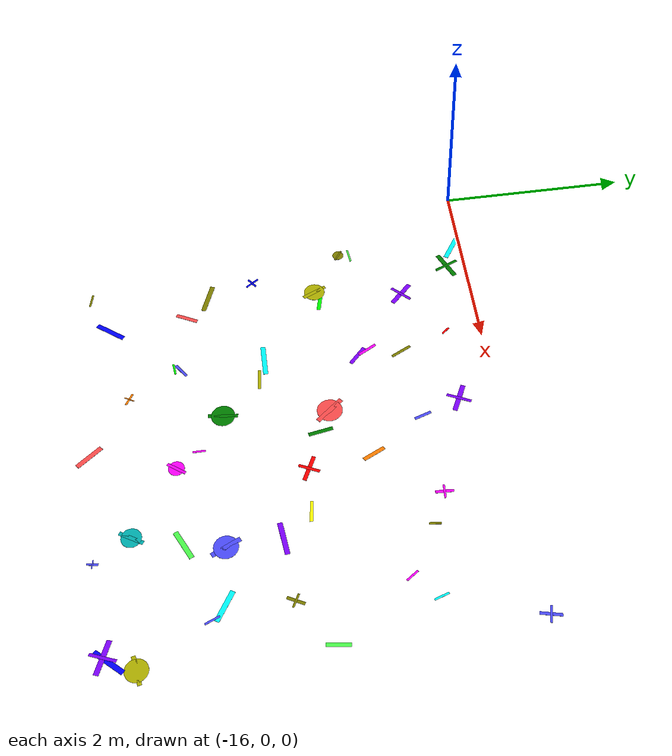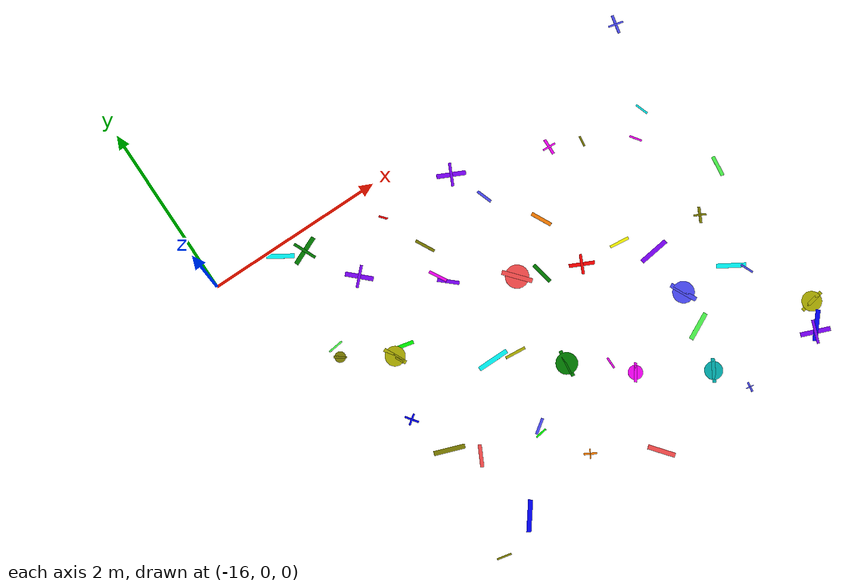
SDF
<sdf version="1.6">
 <world name="default">
  <model name="letter_W_41">
   <static>true</static>
   <pose>-15.07 -4.09 0.008 0 0 6.066</pose>
   <link name="link">
    <visual name="visual">
     <geometry><box><size>0.16 0.02 0.002</size></box></geometry>
     <material>
      <ambient>0.5 0.5 0.0 1</ambient>
      <diffuse>0.5 0.5 0.0 1</diffuse>
      <specular>0.1 0.1 0.1 1</specular>
     </material>
    </visual>
   </link>
  </model>
  <model name="letter_R_42">
   <static>true</static>
   <pose>-14.61 -3.89 0.011 0 0 0.914</pose>
   <link name="link">
    <visual name="visual">
     <geometry><box><size>0.34 0.05 0.002</size></box></geometry>
     <material>
      <ambient>0.0 0.0 1.0 1</ambient>
      <diffuse>0.0 0.0 1.0 1</diffuse>
      <specular>0.1 0.1 0.1 1</specular>
     </material>
    </visual>
   </link>
  </model>
  <model name="letter_Z_44">
   <static>true</static>
   <pose>-14.68 -3.08 0.006 0 0 1.091</pose>
   <link name="link">
    <visual name="visual">
     <geometry><box><size>0.24 0.04 0.002</size></box></geometry>
     <material>
      <ambient>1.0 0.3 0.3 1</ambient>
      <diffuse>1.0 0.3 0.3 1</diffuse>
      <specular>0.1 0.1 0.1 1</specular>
     </material>
    </visual>
   </link>
  </model>
  <model name="letter_S_45">
   <static>true</static>
   <pose>-14.92 -2.84 0.005 0 0 2.789</pose>
   <link name="link">
    <visual name="visual">
     <geometry><box><size>0.34 0.05 0.002</size></box></geometry>
     <material>
      <ambient>0.5 0.5 0.0 1</ambient>
      <diffuse>0.5 0.5 0.0 1</diffuse>
      <specular>0.1 0.1 0.1 1</specular>
     </material>
    </visual>
   </link>
  </model>
  <model name="letter_O_46">
   <static>true</static>
   <pose>-14.84 -1.69 0.010 0 0 2.019</pose>
   <link name="link">
    <visual name="visual">
     <geometry><box><size>0.27 0.04 0.002</size></box></geometry>
     <material>
      <ambient>0.7 0.7 0.0 1</ambient>
      <diffuse>0.7 0.7 0.0 1</diffuse>
      <specular>0.1 0.1 0.1 1</specular>
     </material>
    </visual>
    <visual name="visual2">
     <geometry><cylinder><radius>0.11</radius><length>0.002</length></cylinder></geometry>
     <material><ambient>0.7 0.7 0.0 1</ambient><diffuse>0.7 0.7 0.0 1</diffuse></material>
    </visual>
   </link>
  </model>
  <model name="letter_M_47">
   <static>true</static>
   <pose>-14.73 -1.64 0.007 0 0 6.056</pose>
   <link name="link">
    <visual name="visual">
     <geometry><box><size>0.28 0.04 0.002</size></box></geometry>
     <material>
      <ambient>0.0 1.0 0.0 1</ambient>
      <diffuse>0.0 1.0 0.0 1</diffuse>
      <specular>0.1 0.1 0.1 1</specular>
     </material>
    </visual>
   </link>
  </model>
  <model name="letter_F_48">
   <static>true</static>
   <pose>-15.07 -2.35 0.004 0 0 2.189</pose>
   <link name="link">
    <visual name="visual">
     <geometry><box><size>0.16 0.02 0.002</size></box></geometry>
     <material>
      <ambient>0.0 0.0 1.0 1</ambient>
      <diffuse>0.0 0.0 1.0 1</diffuse>
      <specular>0.1 0.1 0.1 1</specular>
     </material>
    </visual>
    <visual name="visual2">
     <pose>0 0 0.001 0 0 1.57</pose>
     <geometry><box><size>0.13 0.02 0.001</size></box></geometry>
     <material><ambient>0.0 0.0 1.0 1</ambient><diffuse>0.0 0.0 1.0 1</diffuse></material>
    </visual>
   </link>
  </model>
  <model name="letter_R_49">
   <static>true</static>
   <pose>-15.31 -1.25 0.010 0 0 3.256</pose>
   <link name="link">
    <visual name="visual">
     <geometry><box><size>0.17 0.02 0.002</size></box></geometry>
     <material>
      <ambient>0.3 1.0 0.3 1</ambient>
      <diffuse>0.3 1.0 0.3 1</diffuse>
      <specular>0.1 0.1 0.1 1</specular>
     </material>
    </visual>
   </link>
  </model>
  <model name="letter_G_50">
   <static>true</static>
   <pose>-15.33 -1.37 0.010 0 0 2.528</pose>
   <link name="link">
    <visual name="visual">
     <geometry><box><size>0.14 0.02 0.002</size></box></geometry>
     <material>
      <ambient>0.5 0.5 0.0 1</ambient>
      <diffuse>0.5 0.5 0.0 1</diffuse>
      <specular>0.1 0.1 0.1 1</specular>
     </material>
    </visual>
    <visual name="visual2">
     <geometry><cylinder><radius>0.06</radius><length>0.002</length></cylinder></geometry>
     <material><ambient>0.5 0.5 0.0 1</ambient><diffuse>0.5 0.5 0.0 1</diffuse></material>
    </visual>
   </link>
  </model>
  <model name="letter_T_51">
   <static>true</static>
   <pose>-14.68 -0.76 0.012 0 0 2.367</pose>
   <link name="link">
    <visual name="visual">
     <geometry><box><size>0.31 0.05 0.002</size></box></geometry>
     <material>
      <ambient>0.5 0.0 1.0 1</ambient>
      <diffuse>0.5 0.0 1.0 1</diffuse>
      <specular>0.1 0.1 0.1 1</specular>
     </material>
    </visual>
    <visual name="visual2">
     <pose>0 0 0.001 0 0 1.57</pose>
     <geometry><box><size>0.25 0.03 0.001</size></box></geometry>
     <material><ambient>0.5 0.0 1.0 1</ambient><diffuse>0.5 0.0 1.0 1</diffuse></material>
    </visual>
   </link>
  </model>
  <model name="letter_F_52">
   <static>true</static>
   <pose>-15.01 -0.20 0.011 0 0 3.553</pose>
   <link name="link">
    <visual name="visual">
     <geometry><box><size>0.34 0.05 0.002</size></box></geometry>
     <material>
      <ambient>0.0 0.5 0.0 1</ambient>
      <diffuse>0.0 0.5 0.0 1</diffuse>
      <specular>0.1 0.1 0.1 1</specular>
     </material>
    </visual>
    <visual name="visual2">
     <pose>0 0 0.001 0 0 1.57</pose>
     <geometry><box><size>0.27 0.03 0.001</size></box></geometry>
     <material><ambient>0.0 0.5 0.0 1</ambient><diffuse>0.0 0.5 0.0 1</diffuse></material>
    </visual>
   </link>
  </model>
  <model name="letter_N_53">
   <static>true</static>
   <pose>-15.26 -0.10 0.006 0 0 5.713</pose>
   <link name="link">
    <visual name="visual">
     <geometry><box><size>0.30 0.05 0.002</size></box></geometry>
     <material>
      <ambient>0.0 1.0 1.0 1</ambient>
      <diffuse>0.0 1.0 1.0 1</diffuse>
      <specular>0.1 0.1 0.1 1</specular>
     </material>
    </visual>
   </link>
  </model>
  <model name="letter_I_120">
   <static>true</static>
   <pose>-13.71 -3.71 0.005 0 0 5.758</pose>
   <link name="link">
    <visual name="visual">
     <geometry><box><size>0.14 0.02 0.002</size></box></geometry>
     <material>
      <ambient>1.0 0.5 0.0 1</ambient>
      <diffuse>1.0 0.5 0.0 1</diffuse>
      <specular>0.1 0.1 0.1 1</specular>
     </material>
    </visual>
    <visual name="visual2">
     <pose>0 0 0.001 0 0 1.57</pose>
     <geometry><box><size>0.11 0.01 0.001</size></box></geometry>
     <material><ambient>1.0 0.5 0.0 1</ambient><diffuse>1.0 0.5 0.0 1</diffuse></material>
    </visual>
   </link>
  </model>
  <model name="letter_J_122">
   <static>true</static>
   <pose>-13.99 -3.17 0.012 0 0 0.605</pose>
   <link name="link">
    <visual name="visual">
     <geometry><box><size>0.18 0.03 0.002</size></box></geometry>
     <material>
      <ambient>0.3 0.3 1.0 1</ambient>
      <diffuse>0.3 0.3 1.0 1</diffuse>
      <specular>0.1 0.1 0.1 1</specular>
     </material>
    </visual>
   </link>
  </model>
  <model name="letter_S_123">
   <static>true</static>
   <pose>-14.02 -3.24 0.009 0 0 3.276</pose>
   <link name="link">
    <visual name="visual">
     <geometry><box><size>0.13 0.02 0.002</size></box></geometry>
     <material>
      <ambient>0.0 1.0 0.0 1</ambient>
      <diffuse>0.0 1.0 0.0 1</diffuse>
      <specular>0.1 0.1 0.1 1</specular>
     </material>
    </visual>
   </link>
  </model>
  <model name="letter_Y_124">
   <static>true</static>
   <pose>-13.76 -2.38 0.013 0 0 6.184</pose>
   <link name="link">
    <visual name="visual">
     <geometry><box><size>0.23 0.03 0.002</size></box></geometry>
     <material>
      <ambient>0.7 0.7 0.0 1</ambient>
      <diffuse>0.7 0.7 0.0 1</diffuse>
      <specular>0.1 0.1 0.1 1</specular>
     </material>
    </visual>
   </link>
  </model>
  <model name="letter_W_125">
   <static>true</static>
   <pose>-14.00 -2.31 0.005 0 0 6.282</pose>
   <link name="link">
    <visual name="visual">
     <geometry><box><size>0.35 0.05 0.002</size></box></geometry>
     <material>
      <ambient>0.0 1.0 1.0 1</ambient>
      <diffuse>0.0 1.0 1.0 1</diffuse>
      <specular>0.1 0.1 0.1 1</specular>
     </material>
    </visual>
   </link>
  </model>
  <model name="letter_Y_126">
   <static>true</static>
   <pose>-13.98 -1.23 0.011 0 0 5.224</pose>
   <link name="link">
    <visual name="visual">
     <geometry><box><size>0.21 0.03 0.002</size></box></geometry>
     <material>
      <ambient>1.0 0.0 1.0 1</ambient>
      <diffuse>1.0 0.0 1.0 1</diffuse>
      <specular>0.1 0.1 0.1 1</specular>
     </material>
    </visual>
   </link>
  </model>
  <model name="letter_Y_127">
   <static>true</static>
   <pose>-13.91 -0.88 0.008 0 0 2.044</pose>
   <link name="link">
    <visual name="visual">
     <geometry><box><size>0.23 0.03 0.002</size></box></geometry>
     <material>
      <ambient>0.5 0.5 0.0 1</ambient>
      <diffuse>0.5 0.5 0.0 1</diffuse>
      <specular>0.1 0.1 0.1 1</specular>
     </material>
    </visual>
   </link>
  </model>
  <model name="letter_J_128">
   <static>true</static>
   <pose>-13.92 -1.34 0.008 0 0 2.401</pose>
   <link name="link">
    <visual name="visual">
     <geometry><box><size>0.24 0.04 0.002</size></box></geometry>
     <material>
      <ambient>0.5 0.0 1.0 1</ambient>
      <diffuse>0.5 0.0 1.0 1</diffuse>
      <specular>0.1 0.1 0.1 1</specular>
     </material>
    </visual>
   </link>
  </model>
  <model name="letter_K_129">
   <static>true</static>
   <pose>-14.11 -0.37 0.009 0 0 2.264</pose>
   <link name="link">
    <visual name="visual">
     <geometry><box><size>0.10 0.02 0.002</size></box></geometry>
     <material>
      <ambient>1.0 0.0 0.0 1</ambient>
      <diffuse>1.0 0.0 0.0 1</diffuse>
      <specular>0.1 0.1 0.1 1</specular>
     </material>
    </visual>
   </link>
  </model>
  <model name="letter_N_193">
   <static>true</static>
   <pose>-13.07 -4.11 0.011 0 0 2.240</pose>
   <link name="link">
    <visual name="visual">
     <geometry><box><size>0.30 0.05 0.002</size></box></geometry>
     <material>
      <ambient>1.0 0.3 0.3 1</ambient>
      <diffuse>1.0 0.3 0.3 1</diffuse>
      <specular>0.1 0.1 0.1 1</specular>
     </material>
    </visual>
   </link>
  </model>
  <model name="letter_Q_195">
   <static>true</static>
   <pose>-12.82 -3.27 0.006 0 0 0.943</pose>
   <link name="link">
    <visual name="visual">
     <geometry><box><size>0.21 0.03 0.002</size></box></geometry>
     <material>
      <ambient>1.0 0.0 1.0 1</ambient>
      <diffuse>1.0 0.0 1.0 1</diffuse>
      <specular>0.1 0.1 0.1 1</specular>
     </material>
    </visual>
    <visual name="visual2">
     <geometry><cylinder><radius>0.08</radius><length>0.002</length></cylinder></geometry>
     <material><ambient>1.0 0.0 1.0 1</ambient><diffuse>1.0 0.0 1.0 1</diffuse></material>
    </visual>
   </link>
  </model>
  <model name="letter_Q_196">
   <static>true</static>
   <pose>-13.37 -2.78 0.005 0 0 1.442</pose>
   <link name="link">
    <visual name="visual">
     <geometry><box><size>0.30 0.04 0.002</size></box></geometry>
     <material>
      <ambient>0.0 0.5 0.0 1</ambient>
      <diffuse>0.0 0.5 0.0 1</diffuse>
      <specular>0.1 0.1 0.1 1</specular>
     </material>
    </visual>
    <visual name="visual2">
     <geometry><cylinder><radius>0.12</radius><length>0.002</length></cylinder></geometry>
     <material><ambient>0.0 0.5 0.0 1</ambient><diffuse>0.0 0.5 0.0 1</diffuse></material>
    </visual>
   </link>
  </model>
  <model name="letter_P_197">
   <static>true</static>
   <pose>-12.98 -3.04 0.012 0 0 1.567</pose>
   <link name="link">
    <visual name="visual">
     <geometry><box><size>0.13 0.02 0.002</size></box></geometry>
     <material>
      <ambient>1.0 0.0 1.0 1</ambient>
      <diffuse>1.0 0.0 1.0 1</diffuse>
      <specular>0.1 0.1 0.1 1</specular>
     </material>
    </visual>
   </link>
  </model>
  <model name="letter_H_198">
   <static>true</static>
   <pose>-12.63 -1.99 0.012 0 0 5.833</pose>
   <link name="link">
    <visual name="visual">
     <geometry><box><size>0.28 0.04 0.002</size></box></geometry>
     <material>
      <ambient>1.0 0.0 0.0 1</ambient>
      <diffuse>1.0 0.0 0.0 1</diffuse>
      <specular>0.1 0.1 0.1 1</specular>
     </material>
    </visual>
    <visual name="visual2">
     <pose>0 0 0.001 0 0 1.57</pose>
     <geometry><box><size>0.22 0.03 0.001</size></box></geometry>
     <material><ambient>1.0 0.0 0.0 1</ambient><diffuse>1.0 0.0 0.0 1</diffuse></material>
    </visual>
   </link>
  </model>
  <model name="letter_X_199">
   <static>true</static>
   <pose>-13.04 -1.83 0.009 0 0 1.746</pose>
   <link name="link">
    <visual name="visual">
     <geometry><box><size>0.25 0.04 0.002</size></box></geometry>
     <material>
      <ambient>0.0 0.5 0.0 1</ambient>
      <diffuse>0.0 0.5 0.0 1</diffuse>
      <specular>0.1 0.1 0.1 1</specular>
     </material>
    </visual>
   </link>
  </model>
  <model name="letter_Q_200">
   <static>true</static>
   <pose>-13.28 -1.71 0.008 0 0 5.415</pose>
   <link name="link">
    <visual name="visual">
     <geometry><box><size>0.34 0.05 0.002</size></box></geometry>
     <material>
      <ambient>1.0 0.3 0.3 1</ambient>
      <diffuse>1.0 0.3 0.3 1</diffuse>
      <specular>0.1 0.1 0.1 1</specular>
     </material>
    </visual>
    <visual name="visual2">
     <geometry><cylinder><radius>0.13</radius><length>0.002</length></cylinder></geometry>
     <material><ambient>1.0 0.3 0.3 1</ambient><diffuse>1.0 0.3 0.3 1</diffuse></material>
    </visual>
   </link>
  </model>
  <model name="letter_J_201">
   <static>true</static>
   <pose>-12.71 -1.34 0.004 0 0 2.025</pose>
   <link name="link">
    <visual name="visual">
     <geometry><box><size>0.24 0.04 0.002</size></box></geometry>
     <material>
      <ambient>1.0 0.5 0.0 1</ambient>
      <diffuse>1.0 0.5 0.0 1</diffuse>
      <specular>0.1 0.1 0.1 1</specular>
     </material>
    </visual>
   </link>
  </model>
  <model name="letter_V_202">
   <static>true</static>
   <pose>-13.08 -0.79 0.011 0 0 1.892</pose>
   <link name="link">
    <visual name="visual">
     <geometry><box><size>0.18 0.03 0.002</size></box></geometry>
     <material>
      <ambient>0.3 0.3 1.0 1</ambient>
      <diffuse>0.3 0.3 1.0 1</diffuse>
      <specular>0.1 0.1 0.1 1</specular>
     </material>
    </visual>
   </link>
  </model>
  <model name="letter_F_203">
   <static>true</static>
   <pose>-13.24 -0.39 0.006 0 0 2.691</pose>
   <link name="link">
    <visual name="visual">
     <geometry><box><size>0.32 0.05 0.002</size></box></geometry>
     <material>
      <ambient>0.5 0.0 1.0 1</ambient>
      <diffuse>0.5 0.0 1.0 1</diffuse>
      <specular>0.1 0.1 0.1 1</specular>
     </material>
    </visual>
    <visual name="visual2">
     <pose>0 0 0.001 0 0 1.57</pose>
     <geometry><box><size>0.26 0.03 0.001</size></box></geometry>
     <material><ambient>0.5 0.0 1.0 1</ambient><diffuse>0.5 0.0 1.0 1</diffuse></material>
    </visual>
   </link>
  </model>
  <model name="letter_G_271">
   <static>true</static>
   <pose>-12.12 -3.72 0.011 0 0 1.028</pose>
   <link name="link">
    <visual name="visual">
     <geometry><box><size>0.26 0.04 0.002</size></box></geometry>
     <material>
      <ambient>0.0 0.7 0.7 1</ambient>
      <diffuse>0.0 0.7 0.7 1</diffuse>
      <specular>0.1 0.1 0.1 1</specular>
     </material>
    </visual>
    <visual name="visual2">
     <geometry><cylinder><radius>0.10</radius><length>0.002</length></cylinder></geometry>
     <material><ambient>0.0 0.7 0.7 1</ambient><diffuse>0.0 0.7 0.7 1</diffuse></material>
    </visual>
   </link>
  </model>
  <model name="letter_T_272">
   <static>true</static>
   <pose>-11.90 -4.08 0.007 0 0 1.398</pose>
   <link name="link">
    <visual name="visual">
     <geometry><box><size>0.11 0.02 0.002</size></box></geometry>
     <material>
      <ambient>0.3 0.3 1.0 1</ambient>
      <diffuse>0.3 0.3 1.0 1</diffuse>
      <specular>0.1 0.1 0.1 1</specular>
     </material>
    </visual>
    <visual name="visual2">
     <pose>0 0 0.001 0 0 1.57</pose>
     <geometry><box><size>0.09 0.01 0.001</size></box></geometry>
     <material><ambient>0.3 0.3 1.0 1</ambient><diffuse>0.3 0.3 1.0 1</diffuse></material>
    </visual>
   </link>
  </model>
  <model name="letter_G_274">
   <static>true</static>
   <pose>-11.90 -2.85 0.003 0 0 2.017</pose>
   <link name="link">
    <visual name="visual">
     <geometry><box><size>0.31 0.05 0.002</size></box></geometry>
     <material>
      <ambient>0.3 0.3 1.0 1</ambient>
      <diffuse>0.3 0.3 1.0 1</diffuse>
      <specular>0.1 0.1 0.1 1</specular>
     </material>
    </visual>
    <visual name="visual2">
     <geometry><cylinder><radius>0.12</radius><length>0.002</length></cylinder></geometry>
     <material><ambient>0.3 0.3 1.0 1</ambient><diffuse>0.3 0.3 1.0 1</diffuse></material>
    </visual>
   </link>
  </model>
  <model name="letter_K_275">
   <static>true</static>
   <pose>-11.98 -3.24 0.003 0 0 3.598</pose>
   <link name="link">
    <visual name="visual">
     <geometry><box><size>0.32 0.05 0.002</size></box></geometry>
     <material>
      <ambient>0.3 1.0 0.3 1</ambient>
      <diffuse>0.3 1.0 0.3 1</diffuse>
      <specular>0.1 0.1 0.1 1</specular>
     </material>
    </visual>
   </link>
  </model>
  <model name="letter_K_276">
   <static>true</static>
   <pose>-11.91 -2.31 0.007 0 0 3.265</pose>
   <link name="link">
    <visual name="visual">
     <geometry><box><size>0.34 0.05 0.002</size></box></geometry>
     <material>
      <ambient>0.5 0.0 1.0 1</ambient>
      <diffuse>0.5 0.0 1.0 1</diffuse>
      <specular>0.1 0.1 0.1 1</specular>
     </material>
    </visual>
   </link>
  </model>
  <model name="letter_N_277">
   <static>true</static>
   <pose>-12.16 -2.02 0.004 0 0 6.159</pose>
   <link name="link">
    <visual name="visual">
     <geometry><box><size>0.22 0.03 0.002</size></box></geometry>
     <material>
      <ambient>1.0 1.0 0.0 1</ambient>
      <diffuse>1.0 1.0 0.0 1</diffuse>
      <specular>0.1 0.1 0.1 1</specular>
     </material>
    </visual>
   </link>
  </model>
  <model name="letter_Z_278">
   <static>true</static>
   <pose>-11.86 -0.88 0.010 0 0 1.445</pose>
   <link name="link">
    <visual name="visual">
     <geometry><box><size>0.12 0.02 0.002</size></box></geometry>
     <material>
      <ambient>0.5 0.5 0.0 1</ambient>
      <diffuse>0.5 0.5 0.0 1</diffuse>
      <specular>0.1 0.1 0.1 1</specular>
     </material>
    </visual>
   </link>
  </model>
  <model name="letter_A_279">
   <static>true</static>
   <pose>-12.19 -0.73 0.006 0 0 4.664</pose>
   <link name="link">
    <visual name="visual">
     <geometry><box><size>0.18 0.03 0.002</size></box></geometry>
     <material>
      <ambient>1.0 0.0 1.0 1</ambient>
      <diffuse>1.0 0.0 1.0 1</diffuse>
      <specular>0.1 0.1 0.1 1</specular>
     </material>
    </visual>
    <visual name="visual2">
     <pose>0 0 0.001 0 0 1.57</pose>
     <geometry><box><size>0.15 0.02 0.001</size></box></geometry>
     <material><ambient>1.0 0.0 1.0 1</ambient><diffuse>1.0 0.0 1.0 1</diffuse></material>
    </visual>
   </link>
  </model>
  <model name="letter_L_348">
   <static>true</static>
   <pose>-10.98 -3.99 0.010 0 0 2.761</pose>
   <link name="link">
    <visual name="visual">
     <geometry><box><size>0.33 0.05 0.002</size></box></geometry>
     <material>
      <ambient>0.5 0.0 1.0 1</ambient>
      <diffuse>0.5 0.0 1.0 1</diffuse>
      <specular>0.1 0.1 0.1 1</specular>
     </material>
    </visual>
    <visual name="visual2">
     <pose>0 0 0.001 0 0 1.57</pose>
     <geometry><box><size>0.26 0.03 0.001</size></box></geometry>
     <material><ambient>0.5 0.0 1.0 1</ambient><diffuse>0.5 0.0 1.0 1</diffuse></material>
    </visual>
   </link>
  </model>
  <model name="letter_J_349">
   <static>true</static>
   <pose>-10.93 -3.94 0.010 0 0 0.842</pose>
   <link name="link">
    <visual name="visual">
     <geometry><box><size>0.34 0.05 0.002</size></box></geometry>
     <material>
      <ambient>0.0 0.0 1.0 1</ambient>
      <diffuse>0.0 0.0 1.0 1</diffuse>
      <specular>0.1 0.1 0.1 1</specular>
     </material>
    </visual>
   </link>
  </model>
  <model name="letter_Q_350">
   <static>true</static>
   <pose>-10.82 -3.70 0.008 0 0 3.322</pose>
   <link name="link">
    <visual name="visual">
     <geometry><box><size>0.28 0.04 0.002</size></box></geometry>
     <material>
      <ambient>0.7 0.7 0.0 1</ambient>
      <diffuse>0.7 0.7 0.0 1</diffuse>
      <specular>0.1 0.1 0.1 1</specular>
     </material>
    </visual>
    <visual name="visual2">
     <geometry><cylinder><radius>0.11</radius><length>0.002</length></cylinder></geometry>
     <material><ambient>0.7 0.7 0.0 1</ambient><diffuse>0.7 0.7 0.0 1</diffuse></material>
    </visual>
   </link>
  </model>
  <model name="letter_X_352">
   <static>true</static>
   <pose>-11.19 -3.02 0.011 0 0 5.113</pose>
   <link name="link">
    <visual name="visual">
     <geometry><box><size>0.15 0.02 0.002</size></box></geometry>
     <material>
      <ambient>0.3 0.3 1.0 1</ambient>
      <diffuse>0.3 0.3 1.0 1</diffuse>
      <specular>0.1 0.1 0.1 1</specular>
     </material>
    </visual>
   </link>
  </model>
  <model name="letter_J_353">
   <static>true</static>
   <pose>-11.31 -2.90 0.006 0 0 2.592</pose>
   <link name="link">
    <visual name="visual">
     <geometry><box><size>0.32 0.05 0.002</size></box></geometry>
     <material>
      <ambient>0.0 1.0 1.0 1</ambient>
      <diffuse>0.0 1.0 1.0 1</diffuse>
      <specular>0.1 0.1 0.1 1</specular>
     </material>
    </visual>
   </link>
  </model>
  <model name="letter_B_354">
   <static>true</static>
   <pose>-10.80 -1.93 0.005 0 0 4.569</pose>
   <link name="link">
    <visual name="visual">
     <geometry><box><size>0.23 0.04 0.002</size></box></geometry>
     <material>
      <ambient>0.3 1.0 0.3 1</ambient>
      <diffuse>0.3 1.0 0.3 1</diffuse>
      <specular>0.1 0.1 0.1 1</specular>
     </material>
    </visual>
   </link>
  </model>
  <model name="letter_E_355">
   <static>true</static>
   <pose>-11.27 -2.26 0.008 0 0 1.086</pose>
   <link name="link">
    <visual name="visual">
     <geometry><box><size>0.18 0.03 0.002</size></box></geometry>
     <material>
      <ambient>0.5 0.5 0.0 1</ambient>
      <diffuse>0.5 0.5 0.0 1</diffuse>
      <specular>0.1 0.1 0.1 1</specular>
     </material>
    </visual>
    <visual name="visual2">
     <pose>0 0 0.001 0 0 1.57</pose>
     <geometry><box><size>0.14 0.02 0.001</size></box></geometry>
     <material><ambient>0.5 0.5 0.0 1</ambient><diffuse>0.5 0.5 0.0 1</diffuse></material>
    </visual>
   </link>
  </model>
  <model name="letter_X_356">
   <static>true</static>
   <pose>-11.12 -0.95 0.008 0 0 5.029</pose>
   <link name="link">
    <visual name="visual">
     <geometry><box><size>0.15 0.02 0.002</size></box></geometry>
     <material>
      <ambient>0.0 1.0 1.0 1</ambient>
      <diffuse>0.0 1.0 1.0 1</diffuse>
      <specular>0.1 0.1 0.1 1</specular>
     </material>
    </visual>
   </link>
  </model>
  <model name="letter_K_357">
   <static>true</static>
   <pose>-11.36 -1.18 0.007 0 0 5.325</pose>
   <link name="link">
    <visual name="visual">
     <geometry><box><size>0.14 0.02 0.002</size></box></geometry>
     <material>
      <ambient>1.0 0.0 1.0 1</ambient>
      <diffuse>1.0 0.0 1.0 1</diffuse>
      <specular>0.1 0.1 0.1 1</specular>
     </material>
    </visual>
   </link>
  </model>
  <model name="letter_I_359">
   <static>true</static>
   <pose>-10.81 -0.01 0.005 0 0 1.336</pose>
   <link name="link">
    <visual name="visual">
     <geometry><box><size>0.21 0.03 0.002</size></box></geometry>
     <material>
      <ambient>0.3 0.3 1.0 1</ambient>
      <diffuse>0.3 0.3 1.0 1</diffuse>
      <specular>0.1 0.1 0.1 1</specular>
     </material>
    </visual>
    <visual name="visual2">
     <pose>0 0 0.001 0 0 1.57</pose>
     <geometry><box><size>0.17 0.02 0.001</size></box></geometry>
     <material><ambient>0.3 0.3 1.0 1</ambient><diffuse>0.3 0.3 1.0 1</diffuse></material>
    </visual>
   </link>
  </model>
 </world>
</sdf>
